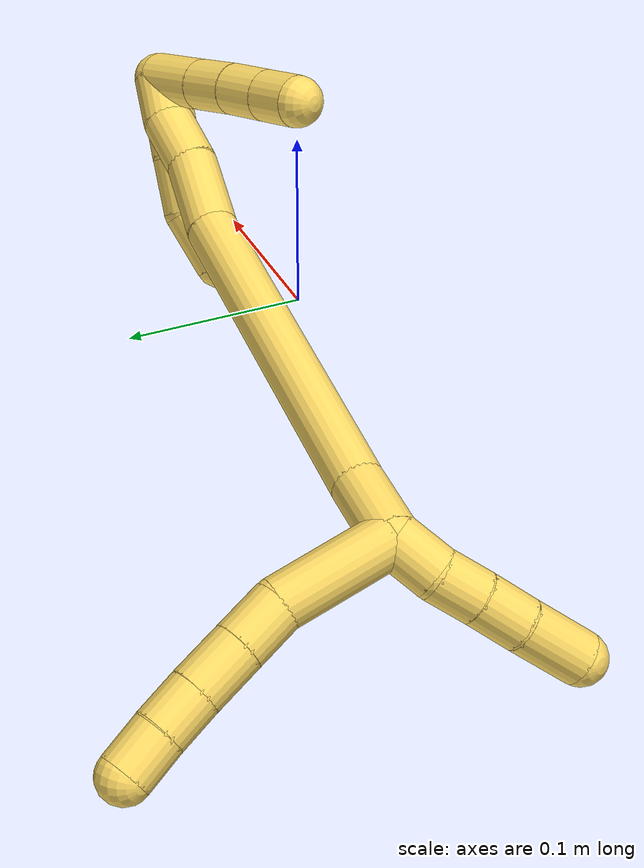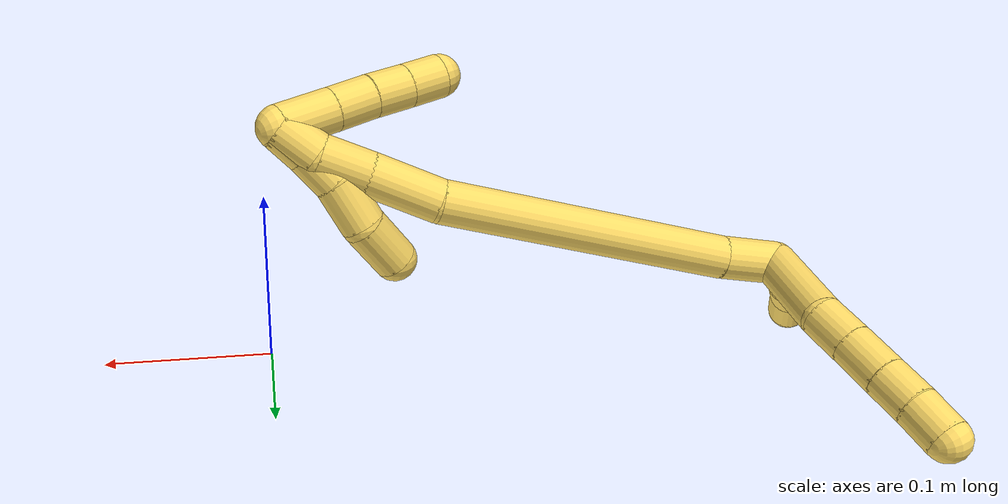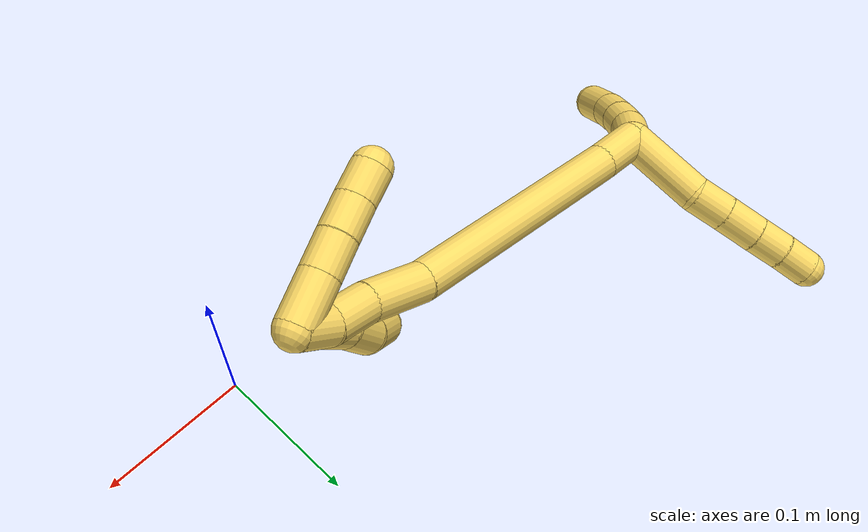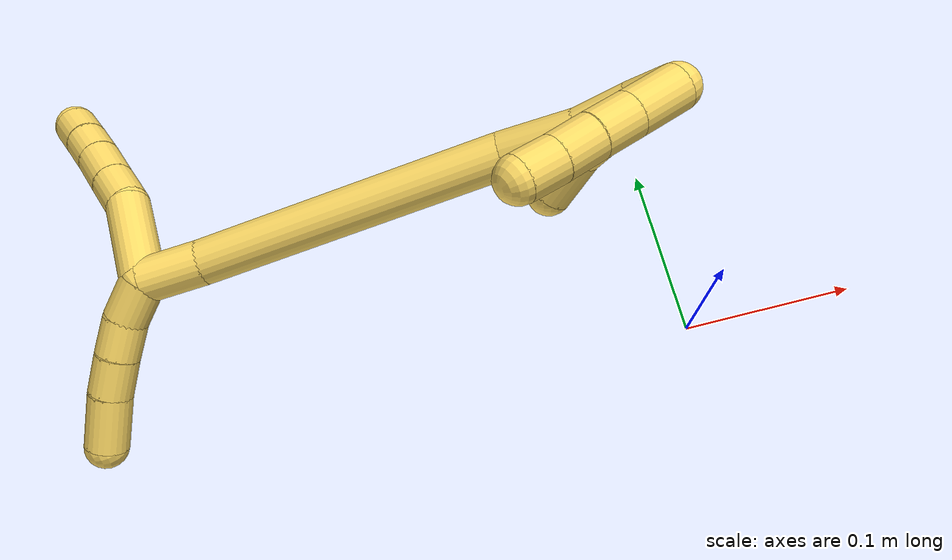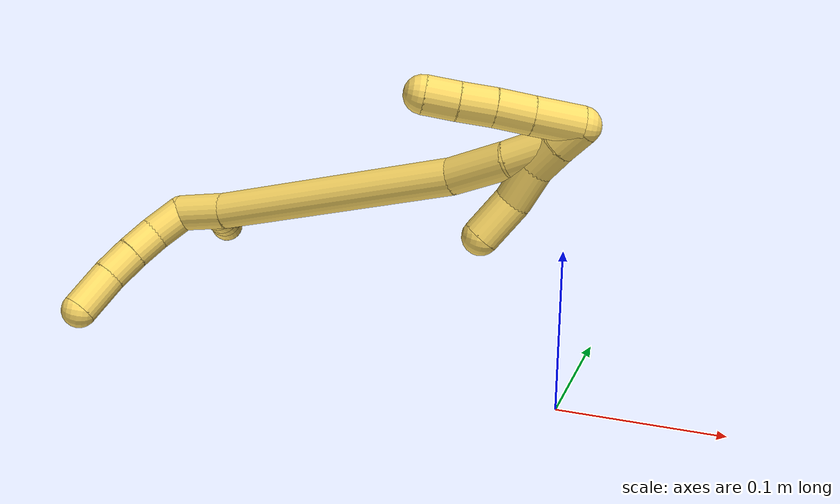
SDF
<sdf version="1.7">
 <world name="default">
  <model name="photoneo_s_sensor">
   <static>1</static>
   <pose>0 0 2 1.57079 1.57079 3.14159</pose>
   <link name="link">
    <inertial><mass>0.1</mass></inertial>
    <sensor name="sensor" type="depth">
     <update_rate>30</update_rate>
     <camera>
      <horizontal_fov>1.22</horizontal_fov>
      <image><width>1920</width><height>1200</height><format>B8G8R8</format></image>
      <clip><near>0.1</near><far>4</far></clip>
      <depth_camera><output>points</output></depth_camera>
     </camera>
     <plugin name="camera_plugin" filename="libgazebo_ros_depth_camera.so">
      <baseline>0.2</baseline>
      <alwaysOn>1</alwaysOn>
      <updateRate>0.0</updateRate>
      <cameraName>camera_ir</cameraName>
      <imageTopicName>/camera/color/image_raw</imageTopicName>
      <cameraInfoTopicName>/camera/color/camera_info</cameraInfoTopicName>
      <depthImageTopicName>/camera/depth/image_raw</depthImageTopicName>
      <depthImageCameraInfoTopicName>/camera/depth/camera_info</depthImageCameraInfoTopicName>
      <pointCloudTopicName>/camera/depth/points</pointCloudTopicName>
      <frameName>fr_optical</frameName>
      <pointCloudCutoff>0.1</pointCloudCutoff>
      <pointCloudCutoffMax>2.0</pointCloudCutoffMax>
      <distortionK1>0</distortionK1>
      <distortionK2>0</distortionK2>
      <distortionK3>0</distortionK3>
      <distortionT1>0</distortionT1>
      <distortionT2>0</distortionT2>
      <CxPrime>0</CxPrime>
      <Cx>0</Cx>
      <Cy>0</Cy>
      <focalLength>0</focalLength>
      <hackBaseline>0</hackBaseline>
     </plugin>
    </sensor>
   </link>
  </model>
  <model name="bin">
   <static>1</static>
   <link name="bottom">
    <collision name="collision-bottom">
     <pose>0 0 -0.01 0 -0 0</pose>
     <geometry><box><size>0.8 0.6 0.02</size></box></geometry>
     <surface>
      <friction><ode><mu>100</mu><mu2>100</mu2></ode></friction>
      <contact><collide_bitmask>65535</collide_bitmask></contact>
     </surface>
    </collision>
   </link>
   <link name="west_wall">
    <collision name="collision-west_wall">
     <pose>-0.41 0 0.1 0 -0 0</pose>
     <geometry><box><size>0.02 0.6 0.2</size></box></geometry>
     <surface>
      <friction><ode><mu>100</mu><mu2>100</mu2></ode></friction>
      <contact><collide_bitmask>65535</collide_bitmask></contact>
     </surface>
    </collision>
   </link>
   <link name="east_wall">
    <collision name="collision-east_wall">
     <pose>0.41 0 0.1 0 -0 0</pose>
     <geometry><box><size>0.02 0.6 0.2</size></box></geometry>
     <surface>
      <friction><ode><mu>100</mu><mu2>100</mu2></ode></friction>
      <contact><collide_bitmask>65535</collide_bitmask></contact>
     </surface>
    </collision>
   </link>
   <link name="south_wall">
    <collision name="collision-south_wall">
     <pose>0 -0.31 0.1 0 -0 0</pose>
     <geometry><box><size>0.8 0.02 0.2</size></box></geometry>
     <surface>
      <friction><ode><mu>100</mu><mu2>100</mu2></ode></friction>
      <contact><collide_bitmask>65535</collide_bitmask></contact>
     </surface>
    </collision>
   </link>
   <link name="north_wall">
    <collision name="collision-north_wall">
     <pose>0 0.31 0.1 0 -0 0</pose>
     <geometry><box><size>0.8 0.02 0.2</size></box></geometry>
     <surface>
      <friction><ode><mu>100</mu><mu2>100</mu2></ode></friction>
      <contact><collide_bitmask>65535</collide_bitmask></contact>
     </surface>
    </collision>
   </link>
  </model>
  <model name="5">
   <static>0</static>
   <link name="5">
    <collision name="collision-cylinder-e_1_2_8">
     <pose>0.003326 0.025875 -0.009955 -1.93808 0.119412 -0.173657</pose>
     <geometry><cylinder><radius>0.0125</radius><length>0.055845</length></cylinder></geometry>
     <surface>
      <friction><ode><mu>1.16</mu><mu2>1.16</mu2><slip1>0</slip1><slip2>0</slip2></ode></friction>
      <contact><ode><kp>1e+06</kp><kd>1</kd><max_vel>0</max_vel><min_depth>0.001</min_depth></ode></contact>
     </surface>
    </collision>
    <visual name="visual-cylinder-e_1_2_8">
     <pose>0.003326 0.025875 -0.009955 -1.93808 0.119412 -0.173657</pose>
     <geometry><cylinder><radius>0.0125</radius><length>0.055845</length></cylinder></geometry>
     <material><ambient>1 0.858824 0.4 1</ambient></material>
    </visual>
    <collision name="collision-cylinder-e_2_8_9">
     <pose>0.00631 0.06382 -0.021442 -1.69702 -0.028201 0.032005</pose>
     <geometry><cylinder><radius>0.0125</radius><length>0.024343</length></cylinder></geometry>
     <surface>
      <friction><ode><mu>1.16</mu><mu2>1.16</mu2><slip1>0</slip1><slip2>0</slip2></ode></friction>
      <contact><ode><kp>1e+06</kp><kd>1</kd><max_vel>0</max_vel><min_depth>0.001</min_depth></ode></contact>
     </surface>
    </collision>
    <visual name="visual-cylinder-e_2_8_9">
     <pose>0.00631 0.06382 -0.021442 -1.69702 -0.028201 0.032005</pose>
     <geometry><cylinder><radius>0.0125</radius><length>0.024343</length></cylinder></geometry>
     <material><ambient>1 0.858824 0.4 1</ambient></material>
    </visual>
    <collision name="collision-cylinder-e_3_9_10">
     <pose>0.005468 0.088682 -0.02472 -1.70645 -0.038589 0.044212</pose>
     <geometry><cylinder><radius>0.0125</radius><length>0.025841</length></cylinder></geometry>
     <surface>
      <friction><ode><mu>1.16</mu><mu2>1.16</mu2><slip1>0</slip1><slip2>0</slip2></ode></friction>
      <contact><ode><kp>1e+06</kp><kd>1</kd><max_vel>0</max_vel><min_depth>0.001</min_depth></ode></contact>
     </surface>
    </collision>
    <visual name="visual-cylinder-e_3_9_10">
     <pose>0.005468 0.088682 -0.02472 -1.70645 -0.038589 0.044212</pose>
     <geometry><cylinder><radius>0.0125</radius><length>0.025841</length></cylinder></geometry>
     <material><ambient>1 0.858824 0.4 1</ambient></material>
    </visual>
    <collision name="collision-cylinder-e_4_10_11">
     <pose>0.004302 0.112348 -0.027668 -1.68093 -0.060945 0.068051</pose>
     <geometry><cylinder><radius>0.0125</radius><length>0.021923</length></cylinder></geometry>
     <surface>
      <friction><ode><mu>1.16</mu><mu2>1.16</mu2><slip1>0</slip1><slip2>0</slip2></ode></friction>
      <contact><ode><kp>1e+06</kp><kd>1</kd><max_vel>0</max_vel><min_depth>0.001</min_depth></ode></contact>
     </surface>
    </collision>
    <visual name="visual-cylinder-e_4_10_11">
     <pose>0.004302 0.112348 -0.027668 -1.68093 -0.060945 0.068051</pose>
     <geometry><cylinder><radius>0.0125</radius><length>0.021923</length></cylinder></geometry>
     <material><ambient>1 0.858824 0.4 1</ambient></material>
    </visual>
    <collision name="collision-cylinder-e_5_11_6">
     <pose>0.002244 0.134095 -0.030058 -1.67952 -0.126472 0.140983</pose>
     <geometry><cylinder><radius>0.0125</radius><length>0.022048</length></cylinder></geometry>
     <surface>
      <friction><ode><mu>1.16</mu><mu2>1.16</mu2><slip1>0</slip1><slip2>0</slip2></ode></friction>
      <contact><ode><kp>1e+06</kp><kd>1</kd><max_vel>0</max_vel><min_depth>0.001</min_depth></ode></contact>
     </surface>
    </collision>
    <visual name="visual-cylinder-e_5_11_6">
     <pose>0.002244 0.134095 -0.030058 -1.67952 -0.126472 0.140983</pose>
     <geometry><cylinder><radius>0.0125</radius><length>0.022048</length></cylinder></geometry>
     <material><ambient>1 0.858824 0.4 1</ambient></material>
    </visual>
    <collision name="collision-cylinder-e_1_2_12">
     <pose>-0.009024 -0.000527 0.008116 0.064804 -0.837254 -0.028841</pose>
     <geometry><cylinder><radius>0.0125</radius><length>0.024296</length></cylinder></geometry>
     <surface>
      <friction><ode><mu>1.16</mu><mu2>1.16</mu2><slip1>0</slip1><slip2>0</slip2></ode></friction>
      <contact><ode><kp>1e+06</kp><kd>1</kd><max_vel>0</max_vel><min_depth>0.001</min_depth></ode></contact>
     </surface>
    </collision>
    <visual name="visual-cylinder-e_1_2_12">
     <pose>-0.009024 -0.000527 0.008116 0.064804 -0.837254 -0.028841</pose>
     <geometry><cylinder><radius>0.0125</radius><length>0.024296</length></cylinder></geometry>
     <material><ambient>1 0.858824 0.4 1</ambient></material>
    </visual>
    <collision name="collision-cylinder-e_2_12_13">
     <pose>-0.026285 -0.003536 0.022537 0.375087 -0.882465 -0.178777</pose>
     <geometry><cylinder><radius>0.0125</radius><length>0.021332</length></cylinder></geometry>
     <surface>
      <friction><ode><mu>1.16</mu><mu2>1.16</mu2><slip1>0</slip1><slip2>0</slip2></ode></friction>
      <contact><ode><kp>1e+06</kp><kd>1</kd><max_vel>0</max_vel><min_depth>0.001</min_depth></ode></contact>
     </surface>
    </collision>
    <visual name="visual-cylinder-e_2_12_13">
     <pose>-0.026285 -0.003536 0.022537 0.375087 -0.882465 -0.178777</pose>
     <geometry><cylinder><radius>0.0125</radius><length>0.021332</length></cylinder></geometry>
     <material><ambient>1 0.858824 0.4 1</ambient></material>
    </visual>
    <collision name="collision-cylinder-e_3_13_14">
     <pose>-0.043676 -0.008567 0.035013 0.391637 -0.940556 -0.20098</pose>
     <geometry><cylinder><radius>0.0125</radius><length>0.02266</length></cylinder></geometry>
     <surface>
      <friction><ode><mu>1.16</mu><mu2>1.16</mu2><slip1>0</slip1><slip2>0</slip2></ode></friction>
      <contact><ode><kp>1e+06</kp><kd>1</kd><max_vel>0</max_vel><min_depth>0.001</min_depth></ode></contact>
     </surface>
    </collision>
    <visual name="visual-cylinder-e_3_13_14">
     <pose>-0.043676 -0.008567 0.035013 0.391637 -0.940556 -0.20098</pose>
     <geometry><cylinder><radius>0.0125</radius><length>0.02266</length></cylinder></geometry>
     <material><ambient>1 0.858824 0.4 1</ambient></material>
    </visual>
    <collision name="collision-cylinder-e_4_14_5">
     <pose>-0.066176 -0.015483 0.048546 0.535463 -1.00053 -0.297692</pose>
     <geometry><cylinder><radius>0.0125</radius><length>0.031712</length></cylinder></geometry>
     <surface>
      <friction><ode><mu>1.16</mu><mu2>1.16</mu2><slip1>0</slip1><slip2>0</slip2></ode></friction>
      <contact><ode><kp>1e+06</kp><kd>1</kd><max_vel>0</max_vel><min_depth>0.001</min_depth></ode></contact>
     </surface>
    </collision>
    <visual name="visual-cylinder-e_4_14_5">
     <pose>-0.066176 -0.015483 0.048546 0.535463 -1.00053 -0.297692</pose>
     <geometry><cylinder><radius>0.0125</radius><length>0.031712</length></cylinder></geometry>
     <material><ambient>1 0.858824 0.4 1</ambient></material>
    </visual>
    <collision name="collision-cylinder-e_1_2_15">
     <pose>0.003309 -0.008018 -0.014726 2.64301 0.19483 0.733025</pose>
     <geometry><cylinder><radius>0.0125</radius><length>0.03418</length></cylinder></geometry>
     <surface>
      <friction><ode><mu>1.16</mu><mu2>1.16</mu2><slip1>0</slip1><slip2>0</slip2></ode></friction>
      <contact><ode><kp>1e+06</kp><kd>1</kd><max_vel>0</max_vel><min_depth>0.001</min_depth></ode></contact>
     </surface>
    </collision>
    <visual name="visual-cylinder-e_1_2_15">
     <pose>0.003309 -0.008018 -0.014726 2.64301 0.19483 0.733025</pose>
     <geometry><cylinder><radius>0.0125</radius><length>0.03418</length></cylinder></geometry>
     <material><ambient>1 0.858824 0.4 1</ambient></material>
    </visual>
    <collision name="collision-cylinder-e_2_15_16">
     <pose>0.029852 -0.057582 -0.100044 2.60964 0.276391 0.944067</pose>
     <geometry><cylinder><radius>0.0125</radius><length>0.170286</length></cylinder></geometry>
     <surface>
      <friction><ode><mu>1.16</mu><mu2>1.16</mu2><slip1>0</slip1><slip2>0</slip2></ode></friction>
      <contact><ode><kp>1e+06</kp><kd>1</kd><max_vel>0</max_vel><min_depth>0.001</min_depth></ode></contact>
     </surface>
    </collision>
    <visual name="visual-cylinder-e_2_15_16">
     <pose>0.029852 -0.057582 -0.100044 2.60964 0.276391 0.944067</pose>
     <geometry><cylinder><radius>0.0125</radius><length>0.170286</length></cylinder></geometry>
     <material><ambient>1 0.858824 0.4 1</ambient></material>
    </visual>
    <collision name="collision-cylinder-e_3_16_17">
     <pose>0.060396 -0.11185 -0.18524 2.42494 0.3609 0.906625</pose>
     <geometry><cylinder><radius>0.0125</radius><length>0.041401</length></cylinder></geometry>
     <surface>
      <friction><ode><mu>1.16</mu><mu2>1.16</mu2><slip1>0</slip1><slip2>0</slip2></ode></friction>
      <contact><ode><kp>1e+06</kp><kd>1</kd><max_vel>0</max_vel><min_depth>0.001</min_depth></ode></contact>
     </surface>
    </collision>
    <visual name="visual-cylinder-e_3_16_17">
     <pose>0.060396 -0.11185 -0.18524 2.42494 0.3609 0.906625</pose>
     <geometry><cylinder><radius>0.0125</radius><length>0.041401</length></cylinder></geometry>
     <material><ambient>1 0.858824 0.4 1</ambient></material>
    </visual>
    <collision name="collision-cylinder-e_4_17_18">
     <pose>0.074042 -0.131566 -0.211314 2.59406 0.440708 1.34661</pose>
     <geometry><cylinder><radius>0.0125</radius><length>0.029709</length></cylinder></geometry>
     <surface>
      <friction><ode><mu>1.16</mu><mu2>1.16</mu2><slip1>0</slip1><slip2>0</slip2></ode></friction>
      <contact><ode><kp>1e+06</kp><kd>1</kd><max_vel>0</max_vel><min_depth>0.001</min_depth></ode></contact>
     </surface>
    </collision>
    <visual name="visual-cylinder-e_4_17_18">
     <pose>0.074042 -0.131566 -0.211314 2.59406 0.440708 1.34661</pose>
     <geometry><cylinder><radius>0.0125</radius><length>0.029709</length></cylinder></geometry>
     <material><ambient>1 0.858824 0.4 1</ambient></material>
    </visual>
    <collision name="collision-cylinder-e_5_18_1">
     <pose>0.087107 -0.146391 -0.229307 2.26521 0.583497 1.13993</pose>
     <geometry><cylinder><radius>0.0125</radius><length>0.024424</length></cylinder></geometry>
     <surface>
      <friction><ode><mu>1.16</mu><mu2>1.16</mu2><slip1>0</slip1><slip2>0</slip2></ode></friction>
      <contact><ode><kp>1e+06</kp><kd>1</kd><max_vel>0</max_vel><min_depth>0.001</min_depth></ode></contact>
     </surface>
    </collision>
    <visual name="visual-cylinder-e_5_18_1">
     <pose>0.087107 -0.146391 -0.229307 2.26521 0.583497 1.13993</pose>
     <geometry><cylinder><radius>0.0125</radius><length>0.024424</length></cylinder></geometry>
     <material><ambient>1 0.858824 0.4 1</ambient></material>
    </visual>
    <collision name="collision-cylinder-e_1_1_19">
     <pose>0.087125 -0.148665 -0.230893 -0.844554 -0.73434 0.342236</pose>
     <geometry><cylinder><radius>0.0125</radius><length>0.020027</length></cylinder></geometry>
     <surface>
      <friction><ode><mu>1.16</mu><mu2>1.16</mu2><slip1>0</slip1><slip2>0</slip2></ode></friction>
      <contact><ode><kp>1e+06</kp><kd>1</kd><max_vel>0</max_vel><min_depth>0.001</min_depth></ode></contact>
     </surface>
    </collision>
    <visual name="visual-cylinder-e_1_1_19">
     <pose>0.087125 -0.148665 -0.230893 -0.844554 -0.73434 0.342236</pose>
     <geometry><cylinder><radius>0.0125</radius><length>0.020027</length></cylinder></geometry>
     <material><ambient>1 0.858824 0.4 1</ambient></material>
    </visual>
    <collision name="collision-cylinder-e_2_19_20">
     <pose>0.073162 -0.136544 -0.221478 -0.971907 -0.739792 0.404027</pose>
     <geometry><cylinder><radius>0.0125</radius><length>0.021517</length></cylinder></geometry>
     <surface>
      <friction><ode><mu>1.16</mu><mu2>1.16</mu2><slip1>0</slip1><slip2>0</slip2></ode></friction>
      <contact><ode><kp>1e+06</kp><kd>1</kd><max_vel>0</max_vel><min_depth>0.001</min_depth></ode></contact>
     </surface>
    </collision>
    <visual name="visual-cylinder-e_2_19_20">
     <pose>0.073162 -0.136544 -0.221478 -0.971907 -0.739792 0.404027</pose>
     <geometry><cylinder><radius>0.0125</radius><length>0.021517</length></cylinder></geometry>
     <material><ambient>1 0.858824 0.4 1</ambient></material>
    </visual>
    <collision name="collision-cylinder-e_3_20_21">
     <pose>0.054572 -0.122873 -0.213335 -1.0949 -0.956522 0.612174</pose>
     <geometry><cylinder><radius>0.0125</radius><length>0.027749</length></cylinder></geometry>
     <surface>
      <friction><ode><mu>1.16</mu><mu2>1.16</mu2><slip1>0</slip1><slip2>0</slip2></ode></friction>
      <contact><ode><kp>1e+06</kp><kd>1</kd><max_vel>0</max_vel><min_depth>0.001</min_depth></ode></contact>
     </surface>
    </collision>
    <visual name="visual-cylinder-e_3_20_21">
     <pose>0.054572 -0.122873 -0.213335 -1.0949 -0.956522 0.612174</pose>
     <geometry><cylinder><radius>0.0125</radius><length>0.027749</length></cylinder></geometry>
     <material><ambient>1 0.858824 0.4 1</ambient></material>
    </visual>
    <collision name="collision-cylinder-e_4_21_4">
     <pose>0.030383 -0.111884 -0.202218 -0.480087 -0.991713 0.26327</pose>
     <geometry><cylinder><radius>0.0125</radius><length>0.030708</length></cylinder></geometry>
     <surface>
      <friction><ode><mu>1.16</mu><mu2>1.16</mu2><slip1>0</slip1><slip2>0</slip2></ode></friction>
      <contact><ode><kp>1e+06</kp><kd>1</kd><max_vel>0</max_vel><min_depth>0.001</min_depth></ode></contact>
     </surface>
    </collision>
    <visual name="visual-cylinder-e_4_21_4">
     <pose>0.030383 -0.111884 -0.202218 -0.480087 -0.991713 0.26327</pose>
     <geometry><cylinder><radius>0.0125</radius><length>0.030708</length></cylinder></geometry>
     <material><ambient>1 0.858824 0.4 1</ambient></material>
    </visual>
    <collision name="collision-cylinder-e_1_1_22">
     <pose>0.09385 -0.154185 -0.22 -0.002355 0.000963 -1e-06</pose>
     <geometry><cylinder><radius>0.0125</radius><length>0.031658</length></cylinder></geometry>
     <surface>
      <friction><ode><mu>1.16</mu><mu2>1.16</mu2><slip1>0</slip1><slip2>0</slip2></ode></friction>
      <contact><ode><kp>1e+06</kp><kd>1</kd><max_vel>0</max_vel><min_depth>0.001</min_depth></ode></contact>
     </surface>
    </collision>
    <visual name="visual-cylinder-e_1_1_22">
     <pose>0.09385 -0.154185 -0.22 -0.002355 0.000963 -1e-06</pose>
     <geometry><cylinder><radius>0.0125</radius><length>0.031658</length></cylinder></geometry>
     <material><ambient>1 0.858824 0.4 1</ambient></material>
    </visual>
    <collision name="collision-cylinder-e_2_22_23">
     <pose>0.094003 -0.154128 -0.192234 -0.001618 0.011571 -9e-06</pose>
     <geometry><cylinder><radius>0.0125</radius><length>0.023877</length></cylinder></geometry>
     <surface>
      <friction><ode><mu>1.16</mu><mu2>1.16</mu2><slip1>0</slip1><slip2>0</slip2></ode></friction>
      <contact><ode><kp>1e+06</kp><kd>1</kd><max_vel>0</max_vel><min_depth>0.001</min_depth></ode></contact>
     </surface>
    </collision>
    <visual name="visual-cylinder-e_2_22_23">
     <pose>0.094003 -0.154128 -0.192234 -0.001618 0.011571 -9e-06</pose>
     <geometry><cylinder><radius>0.0125</radius><length>0.023877</length></cylinder></geometry>
     <material><ambient>1 0.858824 0.4 1</ambient></material>
    </visual>
    <collision name="collision-cylinder-e_3_23_24">
     <pose>0.093787 -0.153926 -0.168877 -0.016016 -0.031002 0.000248</pose>
     <geometry><cylinder><radius>0.0125</radius><length>0.022852</length></cylinder></geometry>
     <surface>
      <friction><ode><mu>1.16</mu><mu2>1.16</mu2><slip1>0</slip1><slip2>0</slip2></ode></friction>
      <contact><ode><kp>1e+06</kp><kd>1</kd><max_vel>0</max_vel><min_depth>0.001</min_depth></ode></contact>
     </surface>
    </collision>
    <visual name="visual-cylinder-e_3_23_24">
     <pose>0.093787 -0.153926 -0.168877 -0.016016 -0.031002 0.000248</pose>
     <geometry><cylinder><radius>0.0125</radius><length>0.022852</length></cylinder></geometry>
     <material><ambient>1 0.858824 0.4 1</ambient></material>
    </visual>
    <collision name="collision-cylinder-e_4_24_3">
     <pose>0.093469 -0.153283 -0.146661 -0.042638 0.003329 -7.1e-05</pose>
     <geometry><cylinder><radius>0.0125</radius><length>0.021614</length></cylinder></geometry>
     <surface>
      <friction><ode><mu>1.16</mu><mu2>1.16</mu2><slip1>0</slip1><slip2>0</slip2></ode></friction>
      <contact><ode><kp>1e+06</kp><kd>1</kd><max_vel>0</max_vel><min_depth>0.001</min_depth></ode></contact>
     </surface>
    </collision>
    <visual name="visual-cylinder-e_4_24_3">
     <pose>0.093469 -0.153283 -0.146661 -0.042638 0.003329 -7.1e-05</pose>
     <geometry><cylinder><radius>0.0125</radius><length>0.021614</length></cylinder></geometry>
     <material><ambient>1 0.858824 0.4 1</ambient></material>
    </visual>
    <collision name="collision-sphere-3">
     <pose>0.093505 -0.152822 -0.135864 0 -0 0</pose>
     <geometry><sphere><radius>0.0125</radius></sphere></geometry>
     <surface>
      <friction><ode><mu>1.16</mu><mu2>1.16</mu2><slip1>0</slip1><slip2>0</slip2></ode></friction>
      <contact><ode><kp>1e+06</kp><kd>1</kd><max_vel>0</max_vel><min_depth>0.001</min_depth></ode></contact>
     </surface>
    </collision>
    <visual name="visual-sphere-3">
     <pose>0.093505 -0.152822 -0.135864 0 -0 0</pose>
     <geometry><sphere><radius>0.0125</radius></sphere></geometry>
     <material><ambient>1 0.858824 0.4 1</ambient></material>
    </visual>
    <collision name="collision-sphere-24">
     <pose>0.093433 -0.153743 -0.157458 0 -0 0</pose>
     <geometry><sphere><radius>0.0125</radius></sphere></geometry>
     <surface>
      <friction><ode><mu>1.16</mu><mu2>1.16</mu2><slip1>0</slip1><slip2>0</slip2></ode></friction>
      <contact><ode><kp>1e+06</kp><kd>1</kd><max_vel>0</max_vel><min_depth>0.001</min_depth></ode></contact>
     </surface>
    </collision>
    <visual name="visual-sphere-24">
     <pose>0.093433 -0.153743 -0.157458 0 -0 0</pose>
     <geometry><sphere><radius>0.0125</radius></sphere></geometry>
     <material><ambient>1 0.858824 0.4 1</ambient></material>
    </visual>
    <collision name="collision-sphere-23">
     <pose>0.094141 -0.154109 -0.180296 0 -0 0</pose>
     <geometry><sphere><radius>0.0125</radius></sphere></geometry>
     <surface>
      <friction><ode><mu>1.16</mu><mu2>1.16</mu2><slip1>0</slip1><slip2>0</slip2></ode></friction>
      <contact><ode><kp>1e+06</kp><kd>1</kd><max_vel>0</max_vel><min_depth>0.001</min_depth></ode></contact>
     </surface>
    </collision>
    <visual name="visual-sphere-23">
     <pose>0.094141 -0.154109 -0.180296 0 -0 0</pose>
     <geometry><sphere><radius>0.0125</radius></sphere></geometry>
     <material><ambient>1 0.858824 0.4 1</ambient></material>
    </visual>
    <collision name="collision-sphere-22">
     <pose>0.093865 -0.154148 -0.204171 0 -0 0</pose>
     <geometry><sphere><radius>0.0125</radius></sphere></geometry>
     <surface>
      <friction><ode><mu>1.16</mu><mu2>1.16</mu2><slip1>0</slip1><slip2>0</slip2></ode></friction>
      <contact><ode><kp>1e+06</kp><kd>1</kd><max_vel>0</max_vel><min_depth>0.001</min_depth></ode></contact>
     </surface>
    </collision>
    <visual name="visual-sphere-22">
     <pose>0.093865 -0.154148 -0.204171 0 -0 0</pose>
     <geometry><sphere><radius>0.0125</radius></sphere></geometry>
     <material><ambient>1 0.858824 0.4 1</ambient></material>
    </visual>
    <collision name="collision-sphere-4">
     <pose>0.017532 -0.108003 -0.194766 0 -0 0</pose>
     <geometry><sphere><radius>0.0125</radius></sphere></geometry>
     <surface>
      <friction><ode><mu>1.16</mu><mu2>1.16</mu2><slip1>0</slip1><slip2>0</slip2></ode></friction>
      <contact><ode><kp>1e+06</kp><kd>1</kd><max_vel>0</max_vel><min_depth>0.001</min_depth></ode></contact>
     </surface>
    </collision>
    <visual name="visual-sphere-4">
     <pose>0.017532 -0.108003 -0.194766 0 -0 0</pose>
     <geometry><sphere><radius>0.0125</radius></sphere></geometry>
     <material><ambient>1 0.858824 0.4 1</ambient></material>
    </visual>
    <collision name="collision-sphere-21">
     <pose>0.043233 -0.115765 -0.209671 0 -0 0</pose>
     <geometry><sphere><radius>0.0125</radius></sphere></geometry>
     <surface>
      <friction><ode><mu>1.16</mu><mu2>1.16</mu2><slip1>0</slip1><slip2>0</slip2></ode></friction>
      <contact><ode><kp>1e+06</kp><kd>1</kd><max_vel>0</max_vel><min_depth>0.001</min_depth></ode></contact>
     </surface>
    </collision>
    <visual name="visual-sphere-21">
     <pose>0.043233 -0.115765 -0.209671 0 -0 0</pose>
     <geometry><sphere><radius>0.0125</radius></sphere></geometry>
     <material><ambient>1 0.858824 0.4 1</ambient></material>
    </visual>
    <collision name="collision-sphere-20">
     <pose>0.06591 -0.129981 -0.216998 0 -0 0</pose>
     <geometry><sphere><radius>0.0125</radius></sphere></geometry>
     <surface>
      <friction><ode><mu>1.16</mu><mu2>1.16</mu2><slip1>0</slip1><slip2>0</slip2></ode></friction>
      <contact><ode><kp>1e+06</kp><kd>1</kd><max_vel>0</max_vel><min_depth>0.001</min_depth></ode></contact>
     </surface>
    </collision>
    <visual name="visual-sphere-20">
     <pose>0.06591 -0.129981 -0.216998 0 -0 0</pose>
     <geometry><sphere><radius>0.0125</radius></sphere></geometry>
     <material><ambient>1 0.858824 0.4 1</ambient></material>
    </visual>
    <collision name="collision-sphere-6">
     <pose>0.000853 0.144966 -0.031244 0 -0 0</pose>
     <geometry><sphere><radius>0.0125</radius></sphere></geometry>
     <surface>
      <friction><ode><mu>1.16</mu><mu2>1.16</mu2><slip1>0</slip1><slip2>0</slip2></ode></friction>
      <contact><ode><kp>1e+06</kp><kd>1</kd><max_vel>0</max_vel><min_depth>0.001</min_depth></ode></contact>
     </surface>
    </collision>
    <visual name="visual-sphere-6">
     <pose>0.000853 0.144966 -0.031244 0 -0 0</pose>
     <geometry><sphere><radius>0.0125</radius></sphere></geometry>
     <material><ambient>1 0.858824 0.4 1</ambient></material>
    </visual>
    <collision name="collision-sphere-11">
     <pose>0.003634 0.123223 -0.028871 0 -0 0</pose>
     <geometry><sphere><radius>0.0125</radius></sphere></geometry>
     <surface>
      <friction><ode><mu>1.16</mu><mu2>1.16</mu2><slip1>0</slip1><slip2>0</slip2></ode></friction>
      <contact><ode><kp>1e+06</kp><kd>1</kd><max_vel>0</max_vel><min_depth>0.001</min_depth></ode></contact>
     </surface>
    </collision>
    <visual name="visual-sphere-11">
     <pose>0.003634 0.123223 -0.028871 0 -0 0</pose>
     <geometry><sphere><radius>0.0125</radius></sphere></geometry>
     <material><ambient>1 0.858824 0.4 1</ambient></material>
    </visual>
    <collision name="collision-sphere-10">
     <pose>0.004969 0.101474 -0.026466 0 -0 0</pose>
     <geometry><sphere><radius>0.0125</radius></sphere></geometry>
     <surface>
      <friction><ode><mu>1.16</mu><mu2>1.16</mu2><slip1>0</slip1><slip2>0</slip2></ode></friction>
      <contact><ode><kp>1e+06</kp><kd>1</kd><max_vel>0</max_vel><min_depth>0.001</min_depth></ode></contact>
     </surface>
    </collision>
    <visual name="visual-sphere-10">
     <pose>0.004969 0.101474 -0.026466 0 -0 0</pose>
     <geometry><sphere><radius>0.0125</radius></sphere></geometry>
     <material><ambient>1 0.858824 0.4 1</ambient></material>
    </visual>
    <collision name="collision-sphere-9">
     <pose>0.005966 0.07589 -0.022974 0 -0 0</pose>
     <geometry><sphere><radius>0.0125</radius></sphere></geometry>
     <surface>
      <friction><ode><mu>1.16</mu><mu2>1.16</mu2><slip1>0</slip1><slip2>0</slip2></ode></friction>
      <contact><ode><kp>1e+06</kp><kd>1</kd><max_vel>0</max_vel><min_depth>0.001</min_depth></ode></contact>
     </surface>
    </collision>
    <visual name="visual-sphere-9">
     <pose>0.005966 0.07589 -0.022974 0 -0 0</pose>
     <geometry><sphere><radius>0.0125</radius></sphere></geometry>
     <material><ambient>1 0.858824 0.4 1</ambient></material>
    </visual>
    <collision name="collision-sphere-2">
     <geometry><sphere><radius>0.0125</radius></sphere></geometry>
     <surface>
      <friction><ode><mu>1.16</mu><mu2>1.16</mu2><slip1>0</slip1><slip2>0</slip2></ode></friction>
      <contact><ode><kp>1e+06</kp><kd>1</kd><max_vel>0</max_vel><min_depth>0.001</min_depth></ode></contact>
     </surface>
    </collision>
    <visual name="visual-sphere-2">
     <geometry><sphere><radius>0.0125</radius></sphere></geometry>
     <material><ambient>1 0.858824 0.4 1</ambient></material>
    </visual>
    <collision name="collision-sphere-19">
     <pose>0.080415 -0.143108 -0.225957 0 -0 0</pose>
     <geometry><sphere><radius>0.0125</radius></sphere></geometry>
     <surface>
      <friction><ode><mu>1.16</mu><mu2>1.16</mu2><slip1>0</slip1><slip2>0</slip2></ode></friction>
      <contact><ode><kp>1e+06</kp><kd>1</kd><max_vel>0</max_vel><min_depth>0.001</min_depth></ode></contact>
     </surface>
    </collision>
    <visual name="visual-sphere-19">
     <pose>0.080415 -0.143108 -0.225957 0 -0 0</pose>
     <geometry><sphere><radius>0.0125</radius></sphere></geometry>
     <material><ambient>1 0.858824 0.4 1</ambient></material>
    </visual>
    <collision name="collision-sphere-8">
     <pose>0.006653 0.05175 -0.01991 0 -0 0</pose>
     <geometry><sphere><radius>0.0125</radius></sphere></geometry>
     <surface>
      <friction><ode><mu>1.16</mu><mu2>1.16</mu2><slip1>0</slip1><slip2>0</slip2></ode></friction>
      <contact><ode><kp>1e+06</kp><kd>1</kd><max_vel>0</max_vel><min_depth>0.001</min_depth></ode></contact>
     </surface>
    </collision>
    <visual name="visual-sphere-8">
     <pose>0.006653 0.05175 -0.01991 0 -0 0</pose>
     <geometry><sphere><radius>0.0125</radius></sphere></geometry>
     <material><ambient>1 0.858824 0.4 1</ambient></material>
    </visual>
    <collision name="collision-sphere-12">
     <pose>-0.018047 -0.001053 0.016232 0 -0 0</pose>
     <geometry><sphere><radius>0.0125</radius></sphere></geometry>
     <surface>
      <friction><ode><mu>1.16</mu><mu2>1.16</mu2><slip1>0</slip1><slip2>0</slip2></ode></friction>
      <contact><ode><kp>1e+06</kp><kd>1</kd><max_vel>0</max_vel><min_depth>0.001</min_depth></ode></contact>
     </surface>
    </collision>
    <visual name="visual-sphere-12">
     <pose>-0.018047 -0.001053 0.016232 0 -0 0</pose>
     <geometry><sphere><radius>0.0125</radius></sphere></geometry>
     <material><ambient>1 0.858824 0.4 1</ambient></material>
    </visual>
    <collision name="collision-sphere-13">
     <pose>-0.034522 -0.006018 0.028841 0 -0 0</pose>
     <geometry><sphere><radius>0.0125</radius></sphere></geometry>
     <surface>
      <friction><ode><mu>1.16</mu><mu2>1.16</mu2><slip1>0</slip1><slip2>0</slip2></ode></friction>
      <contact><ode><kp>1e+06</kp><kd>1</kd><max_vel>0</max_vel><min_depth>0.001</min_depth></ode></contact>
     </surface>
    </collision>
    <visual name="visual-sphere-13">
     <pose>-0.034522 -0.006018 0.028841 0 -0 0</pose>
     <geometry><sphere><radius>0.0125</radius></sphere></geometry>
     <material><ambient>1 0.858824 0.4 1</ambient></material>
    </visual>
    <collision name="collision-sphere-14">
     <pose>-0.052829 -0.011115 0.041184 0 -0 0</pose>
     <geometry><sphere><radius>0.0125</radius></sphere></geometry>
     <surface>
      <friction><ode><mu>1.16</mu><mu2>1.16</mu2><slip1>0</slip1><slip2>0</slip2></ode></friction>
      <contact><ode><kp>1e+06</kp><kd>1</kd><max_vel>0</max_vel><min_depth>0.001</min_depth></ode></contact>
     </surface>
    </collision>
    <visual name="visual-sphere-14">
     <pose>-0.052829 -0.011115 0.041184 0 -0 0</pose>
     <geometry><sphere><radius>0.0125</radius></sphere></geometry>
     <material><ambient>1 0.858824 0.4 1</ambient></material>
    </visual>
    <collision name="collision-sphere-5">
     <pose>-0.079523 -0.019851 0.055908 0 -0 0</pose>
     <geometry><sphere><radius>0.0125</radius></sphere></geometry>
     <surface>
      <friction><ode><mu>1.16</mu><mu2>1.16</mu2><slip1>0</slip1><slip2>0</slip2></ode></friction>
      <contact><ode><kp>1e+06</kp><kd>1</kd><max_vel>0</max_vel><min_depth>0.001</min_depth></ode></contact>
     </surface>
    </collision>
    <visual name="visual-sphere-5">
     <pose>-0.079523 -0.019851 0.055908 0 -0 0</pose>
     <geometry><sphere><radius>0.0125</radius></sphere></geometry>
     <material><ambient>1 0.858824 0.4 1</ambient></material>
    </visual>
    <collision name="collision-sphere-15">
     <pose>0.006617 -0.016035 -0.029451 0 -0 0</pose>
     <geometry><sphere><radius>0.0125</radius></sphere></geometry>
     <surface>
      <friction><ode><mu>1.16</mu><mu2>1.16</mu2><slip1>0</slip1><slip2>0</slip2></ode></friction>
      <contact><ode><kp>1e+06</kp><kd>1</kd><max_vel>0</max_vel><min_depth>0.001</min_depth></ode></contact>
     </surface>
    </collision>
    <visual name="visual-sphere-15">
     <pose>0.006617 -0.016035 -0.029451 0 -0 0</pose>
     <geometry><sphere><radius>0.0125</radius></sphere></geometry>
     <material><ambient>1 0.858824 0.4 1</ambient></material>
    </visual>
    <collision name="collision-sphere-16">
     <pose>0.053086 -0.099128 -0.170637 0 -0 0</pose>
     <geometry><sphere><radius>0.0125</radius></sphere></geometry>
     <surface>
      <friction><ode><mu>1.16</mu><mu2>1.16</mu2><slip1>0</slip1><slip2>0</slip2></ode></friction>
      <contact><ode><kp>1e+06</kp><kd>1</kd><max_vel>0</max_vel><min_depth>0.001</min_depth></ode></contact>
     </surface>
    </collision>
    <visual name="visual-sphere-16">
     <pose>0.053086 -0.099128 -0.170637 0 -0 0</pose>
     <geometry><sphere><radius>0.0125</radius></sphere></geometry>
     <material><ambient>1 0.858824 0.4 1</ambient></material>
    </visual>
    <collision name="collision-sphere-17">
     <pose>0.067705 -0.124571 -0.199843 0 -0 0</pose>
     <geometry><sphere><radius>0.0125</radius></sphere></geometry>
     <surface>
      <friction><ode><mu>1.16</mu><mu2>1.16</mu2><slip1>0</slip1><slip2>0</slip2></ode></friction>
      <contact><ode><kp>1e+06</kp><kd>1</kd><max_vel>0</max_vel><min_depth>0.001</min_depth></ode></contact>
     </surface>
    </collision>
    <visual name="visual-sphere-17">
     <pose>0.067705 -0.124571 -0.199843 0 -0 0</pose>
     <geometry><sphere><radius>0.0125</radius></sphere></geometry>
     <material><ambient>1 0.858824 0.4 1</ambient></material>
    </visual>
    <collision name="collision-sphere-18">
     <pose>0.080379 -0.13856 -0.222785 0 -0 0</pose>
     <geometry><sphere><radius>0.0125</radius></sphere></geometry>
     <surface>
      <friction><ode><mu>1.16</mu><mu2>1.16</mu2><slip1>0</slip1><slip2>0</slip2></ode></friction>
      <contact><ode><kp>1e+06</kp><kd>1</kd><max_vel>0</max_vel><min_depth>0.001</min_depth></ode></contact>
     </surface>
    </collision>
    <visual name="visual-sphere-18">
     <pose>0.080379 -0.13856 -0.222785 0 -0 0</pose>
     <geometry><sphere><radius>0.0125</radius></sphere></geometry>
     <material><ambient>1 0.858824 0.4 1</ambient></material>
    </visual>
    <collision name="collision-sphere-1">
     <pose>0.093835 -0.154222 -0.235829 0 -0 0</pose>
     <geometry><sphere><radius>0.0125</radius></sphere></geometry>
     <surface>
      <friction><ode><mu>1.16</mu><mu2>1.16</mu2><slip1>0</slip1><slip2>0</slip2></ode></friction>
      <contact><ode><kp>1e+06</kp><kd>1</kd><max_vel>0</max_vel><min_depth>0.001</min_depth></ode></contact>
     </surface>
    </collision>
    <visual name="visual-sphere-1">
     <pose>0.093835 -0.154222 -0.235829 0 -0 0</pose>
     <geometry><sphere><radius>0.0125</radius></sphere></geometry>
     <material><ambient>1 0.858824 0.4 1</ambient></material>
    </visual>
    <inertial>
     <pose>0.031901 -0.05388 -0.102886 0 -0 0</pose>
     <mass>0.75</mass>
     <inertia>
      <ixx>0.000623</ixx>
      <ixy>0</ixy>
      <ixz>0</ixz>
      <iyy>0.000191</iyy>
      <iyz>0</iyz>
      <izz>7.6e-05</izz>
     </inertia>
    </inertial>
   </link>
   <pose>-0.292708 0.080916 0.06615 -1.01779 -1.16295 1.45499</pose>
  </model>
 </world>
</sdf>
